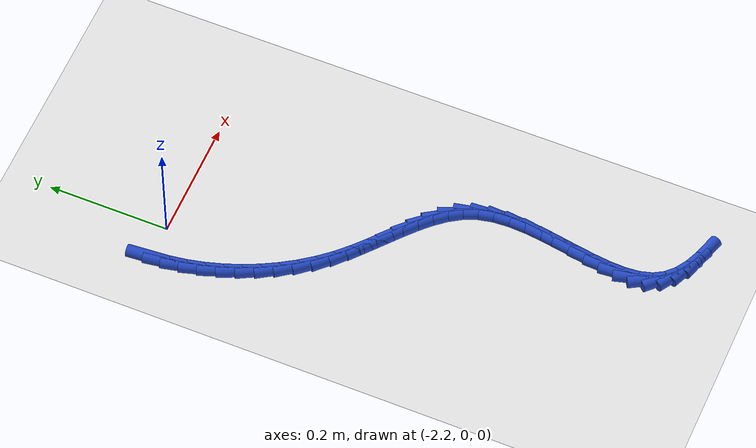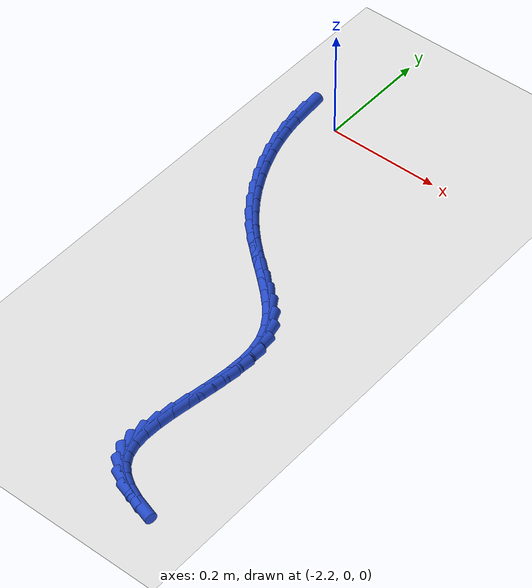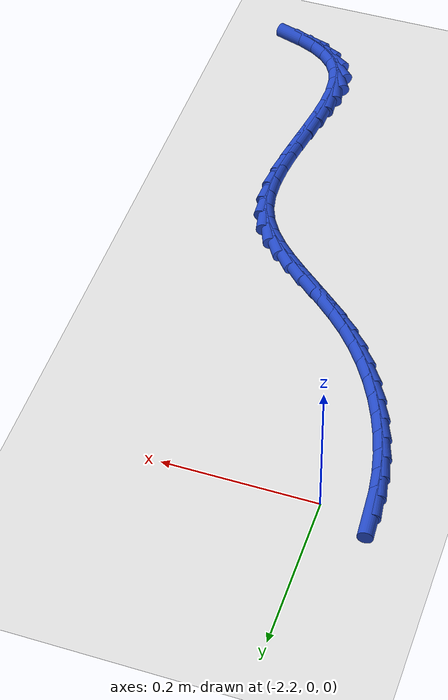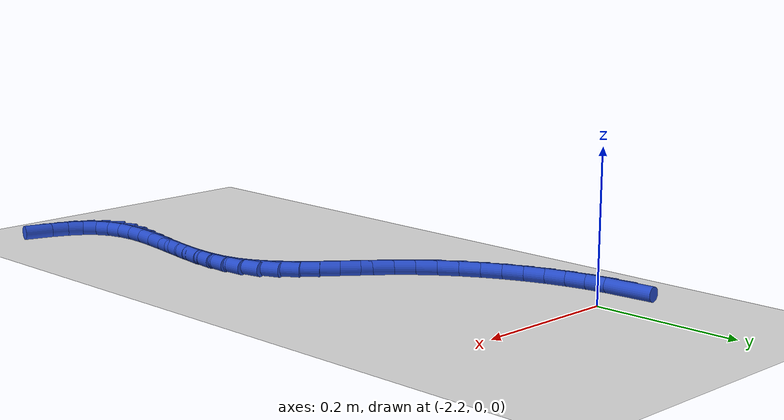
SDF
<sdf version="1.6">
 <world name="default">
  <model name="ground_plane">
   <static>1</static>
   <link name="link">
    <collision name="collision">
     <geometry><plane><normal>0 0 1</normal><size>100 100</size></plane></geometry>
     <surface><friction><ode><mu>100</mu><mu2>50</mu2></ode></friction></surface>
    </collision>
    <visual name="visual">
     <cast_shadows>0</cast_shadows>
     <geometry><plane><normal>0 0 1</normal><size>100 100</size></plane></geometry>
     <material>
      <script><uri>file://media/materials/scripts/gazebo.material</uri><name>Gazebo/WhiteGlow</name></script>
     </material>
    </visual>
   </link>
  </model>
  <model name="line">
   <link name="link_140">
    <pose>-2.2618202145706396 -0.002565413705153132 0.01 0 1.57 -1.492886604890812</pose>
    <collision name="collision">
     <geometry><cylinder><radius>0.01</radius><length>0.08</length></cylinder></geometry>
    </collision>
    <visual name="visual">
     <material>
      <script><name>Gazebo/Blue</name><uri>file://media/materials/scripts/gazebo.material</uri></script>
     </material>
     <geometry><cylinder><radius>0.01</radius><length>0.08</length></cylinder></geometry>
    </visual>
   </link>
   <link name="link_141">
    <pose>-2.259661777750879 -0.030213668837185927 0.01 0 1.57 -1.4174751928642049</pose>
    <collision name="collision">
     <geometry><cylinder><radius>0.01</radius><length>0.08</length></cylinder></geometry>
    </collision>
    <visual name="visual">
     <material>
      <script><name>Gazebo/Blue</name><uri>file://media/materials/scripts/gazebo.material</uri></script>
     </material>
     <geometry><cylinder><radius>0.01</radius><length>0.08</length></cylinder></geometry>
    </visual>
   </link>
   <link name="link_142">
    <pose>-2.255358066077597 -0.05806329148819799 0.01 0 1.57 -1.3455382621958139</pose>
    <collision name="collision">
     <geometry><cylinder><radius>0.01</radius><length>0.08</length></cylinder></geometry>
    </collision>
    <visual name="visual">
     <material>
      <script><name>Gazebo/Blue</name><uri>file://media/materials/scripts/gazebo.material</uri></script>
     </material>
     <geometry><cylinder><radius>0.01</radius><length>0.08</length></cylinder></geometry>
    </visual>
   </link>
   <link name="link_143">
    <pose>-2.248977663376804 -0.08590744199322707 0.01 0 1.57 -1.276057170200284</pose>
    <collision name="collision">
     <geometry><cylinder><radius>0.01</radius><length>0.08</length></cylinder></geometry>
    </collision>
    <visual name="visual">
     <material>
      <script><name>Gazebo/Blue</name><uri>file://media/materials/scripts/gazebo.material</uri></script>
     </material>
     <geometry><cylinder><radius>0.01</radius><length>0.08</length></cylinder></geometry>
    </visual>
   </link>
   <link name="link_144">
    <pose>-2.2405891534745086 -0.11353928068731073 0.01 0 1.57 -1.208060009106109</pose>
    <collision name="collision">
     <geometry><cylinder><radius>0.01</radius><length>0.08</length></cylinder></geometry>
    </collision>
    <visual name="visual">
     <material>
      <script><name>Gazebo/Blue</name><uri>file://media/materials/scripts/gazebo.material</uri></script>
     </material>
     <geometry><cylinder><radius>0.01</radius><length>0.08</length></cylinder></geometry>
    </visual>
   </link>
   <link name="link_145">
    <pose>-2.2302611201967184 -0.14075196790548672 0.01 0 1.57 -1.1406174948958705</pose>
    <collision name="collision">
     <geometry><cylinder><radius>0.01</radius><length>0.08</length></cylinder></geometry>
    </collision>
    <visual name="visual">
     <material>
      <script><name>Gazebo/Blue</name><uri>file://media/materials/scripts/gazebo.material</uri></script>
     </material>
     <geometry><cylinder><radius>0.01</radius><length>0.08</length></cylinder></geometry>
    </visual>
   </link>
   <link name="link_146">
    <pose>-2.218062147369443 -0.16733866398279354 0.01 0 1.57 -1.0728342404756674</pose>
    <collision name="collision">
     <geometry><cylinder><radius>0.01</radius><length>0.08</length></cylinder></geometry>
    </collision>
    <visual name="visual">
     <material>
      <script><name>Gazebo/Blue</name><uri>file://media/materials/scripts/gazebo.material</uri></script>
     </material>
     <geometry><cylinder><radius>0.01</radius><length>0.08</length></cylinder></geometry>
    </visual>
   </link>
   <link name="link_147">
    <pose>-2.2040608188186908 -0.19309252925426706 0.01 0 1.57 -1.0038400388394004</pose>
    <collision name="collision">
     <geometry><cylinder><radius>0.01</radius><length>0.08</length></cylinder></geometry>
    </collision>
    <visual name="visual">
     <material>
      <script><name>Gazebo/Blue</name><uri>file://media/materials/scripts/gazebo.material</uri></script>
     </material>
     <geometry><cylinder><radius>0.01</radius><length>0.08</length></cylinder></geometry>
    </visual>
   </link>
   <link name="link_148">
    <pose>-2.1883257183704705 -0.21780672405494594 0.01 0 1.57 -0.9327849356280962</pose>
    <collision name="collision">
     <geometry><cylinder><radius>0.01</radius><length>0.08</length></cylinder></geometry>
    </collision>
    <visual name="visual">
     <material>
      <script><name>Gazebo/Blue</name><uri>file://media/materials/scripts/gazebo.material</uri></script>
     </material>
     <geometry><cylinder><radius>0.01</radius><length>0.08</length></cylinder></geometry>
    </visual>
   </link>
   <link name="link_149">
    <pose>-2.17092542985079 -0.24127440871986777 0.01 0 1.57 -0.8588418272123269</pose>
    <collision name="collision">
     <geometry><cylinder><radius>0.01</radius><length>0.08</length></cylinder></geometry>
    </collision>
    <visual name="visual">
     <material>
      <script><name>Gazebo/Blue</name><uri>file://media/materials/scripts/gazebo.material</uri></script>
     </material>
     <geometry><cylinder><radius>0.01</radius><length>0.08</length></cylinder></geometry>
    </visual>
   </link>
   <link name="link_150">
    <pose>-2.1519285370856585 -0.26328874358407023 0.01 0 1.57 -0.783635175504014</pose>
    <collision name="collision">
     <geometry><cylinder><radius>0.01</radius><length>0.08</length></cylinder></geometry>
    </collision>
    <visual name="visual">
     <material>
      <script><name>Gazebo/Blue</name><uri>file://media/materials/scripts/gazebo.material</uri></script>
     </material>
     <geometry><cylinder><radius>0.01</radius><length>0.08</length></cylinder></geometry>
    </visual>
   </link>
   <link name="link_151">
    <pose>-2.131450520531161 -0.283694682145986 0.01 0 1.57 -0.7260331824253999</pose>
    <collision name="collision">
     <geometry><cylinder><radius>0.01</radius><length>0.08</length></cylinder></geometry>
    </collision>
    <visual name="visual">
     <material>
      <script><name>Gazebo/Blue</name><uri>file://media/materials/scripts/gazebo.material</uri></script>
     </material>
     <geometry><cylinder><radius>0.01</radius><length>0.08</length></cylinder></geometry>
    </visual>
   </link>
   <link name="link_152">
    <pose>-2.109983469432446 -0.30275310886787604 0.01 0 1.57 -0.6952740641128712</pose>
    <collision name="collision">
     <geometry><cylinder><radius>0.01</radius><length>0.08</length></cylinder></geometry>
    </collision>
    <visual name="visual">
     <material>
      <script><name>Gazebo/Blue</name><uri>file://media/materials/scripts/gazebo.material</uri></script>
     </material>
     <geometry><cylinder><radius>0.01</radius><length>0.08</length></cylinder></geometry>
    </visual>
   </link>
   <link name="link_153">
    <pose>-2.0882007742934547 -0.32092513935238715 0.01 0 1.57 -0.6918353567786839</pose>
    <collision name="collision">
     <geometry><cylinder><radius>0.01</radius><length>0.08</length></cylinder></geometry>
    </collision>
    <visual name="visual">
     <material>
      <script><name>Gazebo/Blue</name><uri>file://media/materials/scripts/gazebo.material</uri></script>
     </material>
     <geometry><cylinder><radius>0.01</radius><length>0.08</length></cylinder></geometry>
    </visual>
   </link>
   <link name="link_154">
    <pose>-2.0667769857121243 -0.33867317042296297 0.01 0 1.57 -0.7172971435385245</pose>
    <collision name="collision">
     <geometry><cylinder><radius>0.01</radius><length>0.08</length></cylinder></geometry>
    </collision>
    <visual name="visual">
     <material>
      <script><name>Gazebo/Blue</name><uri>file://media/materials/scripts/gazebo.material</uri></script>
     </material>
     <geometry><cylinder><radius>0.01</radius><length>0.08</length></cylinder></geometry>
    </visual>
   </link>
   <link name="link_155">
    <pose>-2.04638665428639 -0.3564595989030481 0.01 0 1.57 -0.7747113696304861</pose>
    <collision name="collision">
     <geometry><cylinder><radius>0.01</radius><length>0.08</length></cylinder></geometry>
    </collision>
    <visual name="visual">
     <material>
      <script><name>Gazebo/Blue</name><uri>file://media/materials/scripts/gazebo.material</uri></script>
     </material>
     <geometry><cylinder><radius>0.01</radius><length>0.08</length></cylinder></geometry>
    </visual>
   </link>
   <link name="link_156">
    <pose>-2.027704330614189 -0.37474682161608525 0.01 0 1.57 -0.8682078930785656</pose>
    <collision name="collision">
     <geometry><cylinder><radius>0.01</radius><length>0.08</length></cylinder></geometry>
    </collision>
    <visual name="visual">
     <material>
      <script><name>Gazebo/Blue</name><uri>file://media/materials/scripts/gazebo.material</uri></script>
     </material>
     <geometry><cylinder><radius>0.01</radius><length>0.08</length></cylinder></geometry>
    </visual>
   </link>
   <link name="link_157">
    <pose>-2.011404565293456 -0.3939972353855189 0.01 0 1.57 -1.0011395724636063</pose>
    <collision name="collision">
     <geometry><cylinder><radius>0.01</radius><length>0.08</length></cylinder></geometry>
    </collision>
    <visual name="visual">
     <material>
      <script><name>Gazebo/Blue</name><uri>file://media/materials/scripts/gazebo.material</uri></script>
     </material>
     <geometry><cylinder><radius>0.01</radius><length>0.08</length></cylinder></geometry>
    </visual>
   </link>
   <link name="link_158">
    <pose>-1.9981619089221279 -0.4146732370347932 0.01 0 1.57 -1.1718835337135947</pose>
    <collision name="collision">
     <geometry><cylinder><radius>0.01</radius><length>0.08</length></cylinder></geometry>
    </collision>
    <visual name="visual">
     <material>
      <script><name>Gazebo/Blue</name><uri>file://media/materials/scripts/gazebo.material</uri></script>
     </material>
     <geometry><cylinder><radius>0.01</radius><length>0.08</length></cylinder></geometry>
    </visual>
   </link>
   <link name="link_159">
    <pose>-1.9886509120981404 -0.43723722338735166 0.01 0 1.57 -1.3596448547971522</pose>
    <collision name="collision">
     <geometry><cylinder><radius>0.01</radius><length>0.08</length></cylinder></geometry>
    </collision>
    <visual name="visual">
     <material>
      <script><name>Gazebo/Blue</name><uri>file://media/materials/scripts/gazebo.material</uri></script>
     </material>
     <geometry><cylinder><radius>0.01</radius><length>0.08</length></cylinder></geometry>
    </visual>
   </link>
   <link name="link_160">
    <pose>-1.9833392688379992 -0.46201785978163346 0.01 0 1.57 -1.5093943392878164</pose>
    <collision name="collision">
     <geometry><cylinder><radius>0.01</radius><length>0.08</length></cylinder></geometry>
    </collision>
    <visual name="visual">
     <material>
      <script><name>Gazebo/Blue</name><uri>file://media/materials/scripts/gazebo.material</uri></script>
     </material>
     <geometry><cylinder><radius>0.01</radius><length>0.08</length></cylinder></geometry>
    </visual>
   </link>
   <link name="link_161">
    <pose>-1.9816988684850083 -0.4887000300684345 0.01 0 1.57 1.5279569440375065</pose>
    <collision name="collision">
     <geometry><cylinder><radius>0.01</radius><length>0.08</length></cylinder></geometry>
    </collision>
    <visual name="visual">
     <material>
      <script><name>Gazebo/Blue</name><uri>file://media/materials/scripts/gazebo.material</uri></script>
     </material>
     <geometry><cylinder><radius>0.01</radius><length>0.08</length></cylinder></geometry>
    </visual>
   </link>
   <link name="link_162">
    <pose>-1.9829023250905915 -0.516775138495767 0.01 0 1.57 1.4600655472126112</pose>
    <collision name="collision">
     <geometry><cylinder><radius>0.01</radius><length>0.08</length></cylinder></geometry>
    </collision>
    <visual name="visual">
     <material>
      <script><name>Gazebo/Blue</name><uri>file://media/materials/scripts/gazebo.material</uri></script>
     </material>
     <geometry><cylinder><radius>0.01</radius><length>0.08</length></cylinder></geometry>
    </visual>
   </link>
   <link name="link_163">
    <pose>-1.9861221941677667 -0.5457345514669296 0.01 0 1.57 1.4216205291801176</pose>
    <collision name="collision">
     <geometry><cylinder><radius>0.01</radius><length>0.08</length></cylinder></geometry>
    </collision>
    <visual name="visual">
     <material>
      <script><name>Gazebo/Blue</name><uri>file://media/materials/scripts/gazebo.material</uri></script>
     </material>
     <geometry><cylinder><radius>0.01</radius><length>0.08</length></cylinder></geometry>
    </visual>
   </link>
   <link name="link_164">
    <pose>-1.9905310312295517 -0.5750696353852218 0.01 0 1.57 1.4088699293782976</pose>
    <collision name="collision">
     <geometry><cylinder><radius>0.01</radius><length>0.08</length></cylinder></geometry>
    </collision>
    <visual name="visual">
     <material>
      <script><name>Gazebo/Blue</name><uri>file://media/materials/scripts/gazebo.material</uri></script>
     </material>
     <geometry><cylinder><radius>0.01</radius><length>0.08</length></cylinder></geometry>
    </visual>
   </link>
   <link name="link_165">
    <pose>-1.9953013917889628 -0.6042717566539406 0.01 0 1.57 1.4212092388626634</pose>
    <collision name="collision">
     <geometry><cylinder><radius>0.01</radius><length>0.08</length></cylinder></geometry>
    </collision>
    <visual name="visual">
     <material>
      <script><name>Gazebo/Blue</name><uri>file://media/materials/scripts/gazebo.material</uri></script>
     </material>
     <geometry><cylinder><radius>0.01</radius><length>0.08</length></cylinder></geometry>
    </visual>
   </link>
   <link name="link_166">
    <pose>-1.9996058313590184 -0.6328322816763856 0.01 0 1.57 1.4613830925446385</pose>
    <collision name="collision">
     <geometry><cylinder><radius>0.01</radius><length>0.08</length></cylinder></geometry>
    </collision>
    <visual name="visual">
     <material>
      <script><name>Gazebo/Blue</name><uri>file://media/materials/scripts/gazebo.material</uri></script>
     </material>
     <geometry><cylinder><radius>0.01</radius><length>0.08</length></cylinder></geometry>
    </visual>
   </link>
   <link name="link_167">
    <pose>-2.002616905452735 -0.6602425768558552 0.01 0 1.57 1.5362386479500023</pose>
    <collision name="collision">
     <geometry><cylinder><radius>0.01</radius><length>0.08</length></cylinder></geometry>
    </collision>
    <visual name="visual">
     <material>
      <script><name>Gazebo/Blue</name><uri>file://media/materials/scripts/gazebo.material</uri></script>
     </material>
     <geometry><cylinder><radius>0.01</radius><length>0.08</length></cylinder></geometry>
    </visual>
   </link>
   <link name="link_168">
    <pose>-2.003507169583131 -0.6859940085956482 0.01 0 1.57 -1.483754431235116</pose>
    <collision name="collision">
     <geometry><cylinder><radius>0.01</radius><length>0.08</length></cylinder></geometry>
    </collision>
    <visual name="visual">
     <material>
      <script><name>Gazebo/Blue</name><uri>file://media/materials/scripts/gazebo.material</uri></script>
     </material>
     <geometry><cylinder><radius>0.01</radius><length>0.08</length></cylinder></geometry>
    </visual>
   </link>
   <link name="link_169">
    <pose>-2.001449179263223 -0.7095779432990631 0.01 0 1.57 -1.298696885111914</pose>
    <collision name="collision">
     <geometry><cylinder><radius>0.01</radius><length>0.08</length></cylinder></geometry>
    </collision>
    <visual name="visual">
     <material>
      <script><name>Gazebo/Blue</name><uri>file://media/materials/scripts/gazebo.material</uri></script>
     </material>
     <geometry><cylinder><radius>0.01</radius><length>0.08</length></cylinder></geometry>
    </visual>
   </link>
   <link name="link_170">
    <pose>-1.9956154900060303 -0.7304857473693991 0.01 0 1.57 -1.0419036927926628</pose>
    <collision name="collision">
     <geometry><cylinder><radius>0.01</radius><length>0.08</length></cylinder></geometry>
    </collision>
    <visual name="visual">
     <material>
      <script><name>Gazebo/Blue</name><uri>file://media/materials/scripts/gazebo.material</uri></script>
     </material>
     <geometry><cylinder><radius>0.01</radius><length>0.08</length></cylinder></geometry>
    </visual>
   </link>
   <link name="link_171">
    <pose>-1.9852358618478498 -0.748245992582857 0.01 0 1.57 -0.7763446197656425</pose>
    <collision name="collision">
     <geometry><cylinder><radius>0.01</radius><length>0.08</length></cylinder></geometry>
    </collision>
    <visual name="visual">
     <material>
      <script><name>Gazebo/Blue</name><uri>file://media/materials/scripts/gazebo.material</uri></script>
     </material>
     <geometry><cylinder><radius>0.01</radius><length>0.08</length></cylinder></geometry>
    </visual>
   </link>
   <link name="link_172">
    <pose>-1.9703197958299443 -0.7628943881445107 0.01 0 1.57 -0.5638790608213129</pose>
    <collision name="collision">
     <geometry><cylinder><radius>0.01</radius><length>0.08</length></cylinder></geometry>
    </collision>
    <visual name="visual">
     <material>
      <script><name>Gazebo/Blue</name><uri>file://media/materials/scripts/gazebo.material</uri></script>
     </material>
     <geometry><cylinder><radius>0.01</radius><length>0.08</length></cylinder></geometry>
    </visual>
   </link>
   <link name="link_173">
    <pose>-1.951440304274198 -0.7748331465729401 0.01 0 1.57 -0.4087040745405201</pose>
    <collision name="collision">
     <geometry><cylinder><radius>0.01</radius><length>0.08</length></cylinder></geometry>
    </collision>
    <visual name="visual">
     <material>
      <script><name>Gazebo/Blue</name><uri>file://media/materials/scripts/gazebo.material</uri></script>
     </material>
     <geometry><cylinder><radius>0.01</radius><length>0.08</length></cylinder></geometry>
    </visual>
   </link>
   <link name="link_174">
    <pose>-1.9291829230708772 -0.7844726256172936 0.01 0 1.57 -0.30006435406579124</pose>
    <collision name="collision">
     <geometry><cylinder><radius>0.01</radius><length>0.08</length></cylinder></geometry>
    </collision>
    <visual name="visual">
     <material>
      <script><name>Gazebo/Blue</name><uri>file://media/materials/scripts/gazebo.material</uri></script>
     </material>
     <geometry><cylinder><radius>0.01</radius><length>0.08</length></cylinder></geometry>
    </visual>
   </link>
  </model>
 </world>
</sdf>
